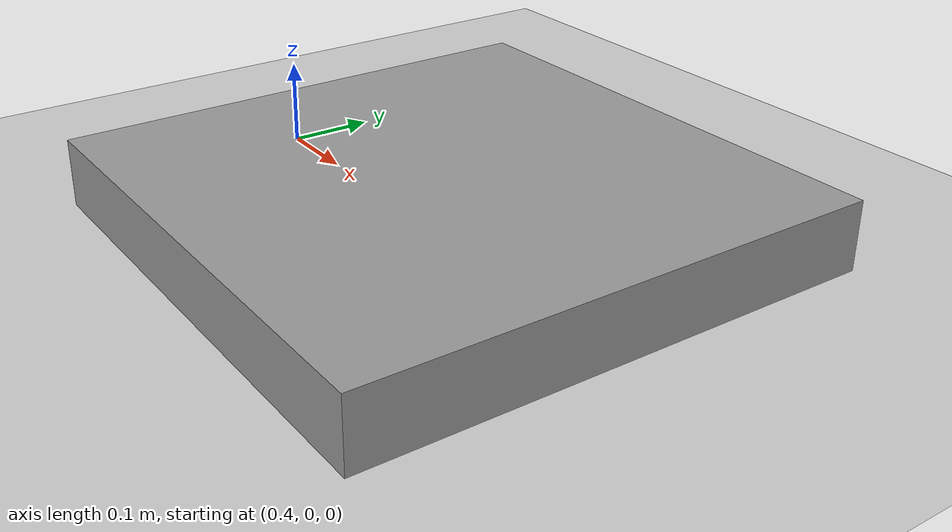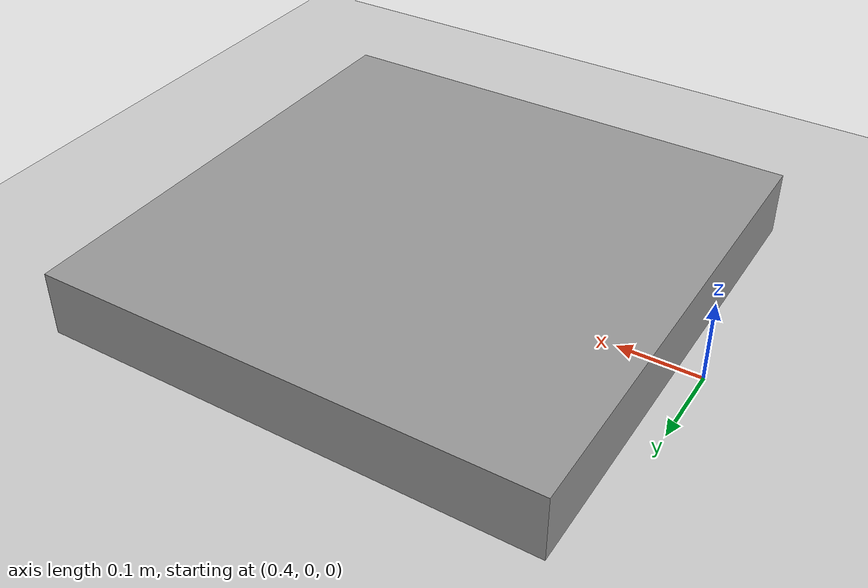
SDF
<?xml version="1.0" ?>

<sdf version="1.5">
    <world name="box_world">
        <!-- Target real time factor is the product of max_step_size and real_time_update_rate -->
        <!-- Negative real_time_update_rate means that Gazebo will run as fast as possible -->
        <physics type="ode">
            <type>world</type>
            <max_step_size>0.001</max_step_size>
            <real_time_update_rate>1000</real_time_update_rate>
            <iters>500</iters>
        </physics>
        <!-- A global light source -->
        <include>
            <uri>model://sun</uri>
        </include>
        <!-- A ground plane -->
        <include>
            <uri>model://ground_plane</uri>
        </include>
        <!-- Adding a box model with specified size and pose -->
        <model name='box'>
            <pose>0.7317 0 0 0 0 0</pose> <!-- Position (x=0.6317, y=0, z=0), no rotation -->
            <link name='link'>
                <pose>0 0 0.04 0 0 0</pose> <!-- Center the box at half height -->
                <collision name='collision'>
                    <geometry>
                        <box>
                            <size>0.60452 0.60452 0.08</size>
                        </box>
                    </geometry>
                    <surface>
                        <friction>
                            <ode>
                                <mu>1</mu>
                                <mu2>1</mu2>
                            </ode>
                        </friction>
                    </surface>
                </collision>
                <visual name='visual'>
                    <geometry>
                        <box>
                            <size>0.60452 0.60452 0.08</size>
                        </box>
                    </geometry>
                    <material>
                        <script>
                            <uri>file://media/materials/scripts/gazebo.material</uri>
                            <name>Gazebo/Gray</name>
                        </script>
                    </material>
                </visual>
            </link>
            <static>true</static>
        </model>

    </world>
</sdf>
